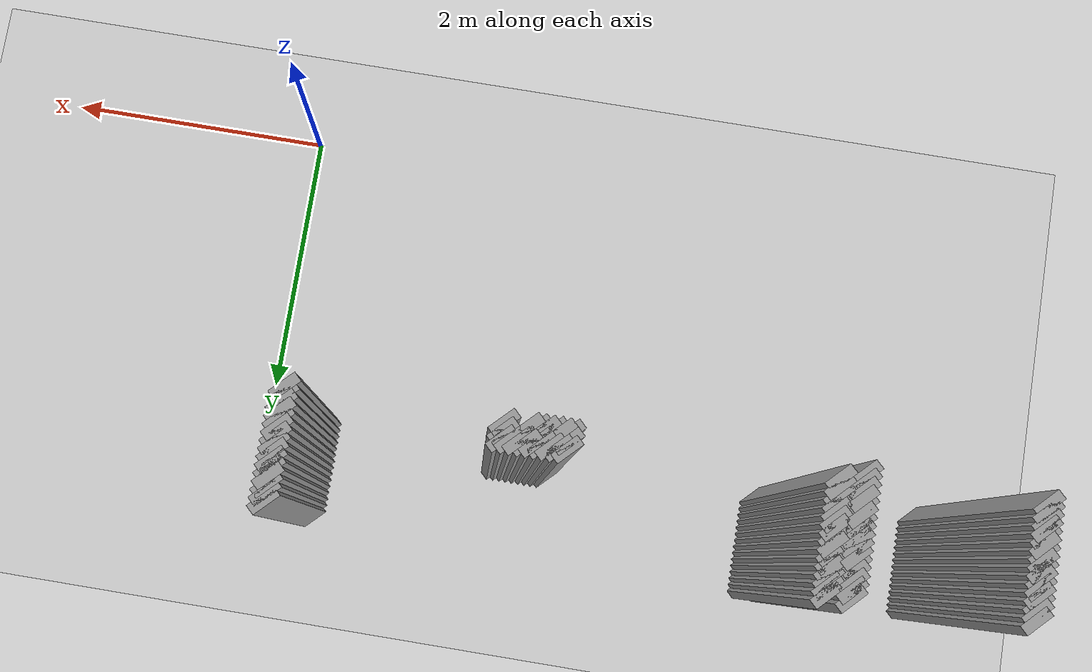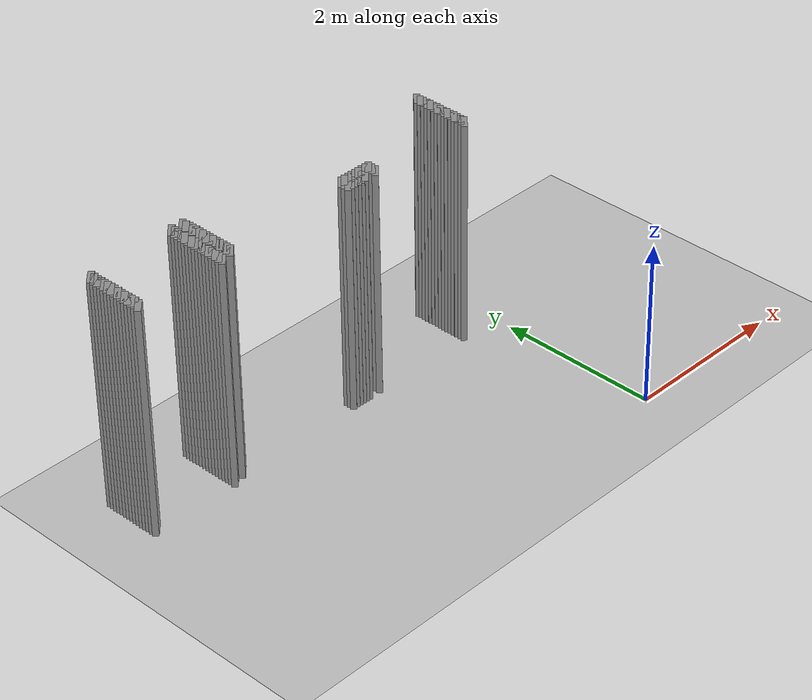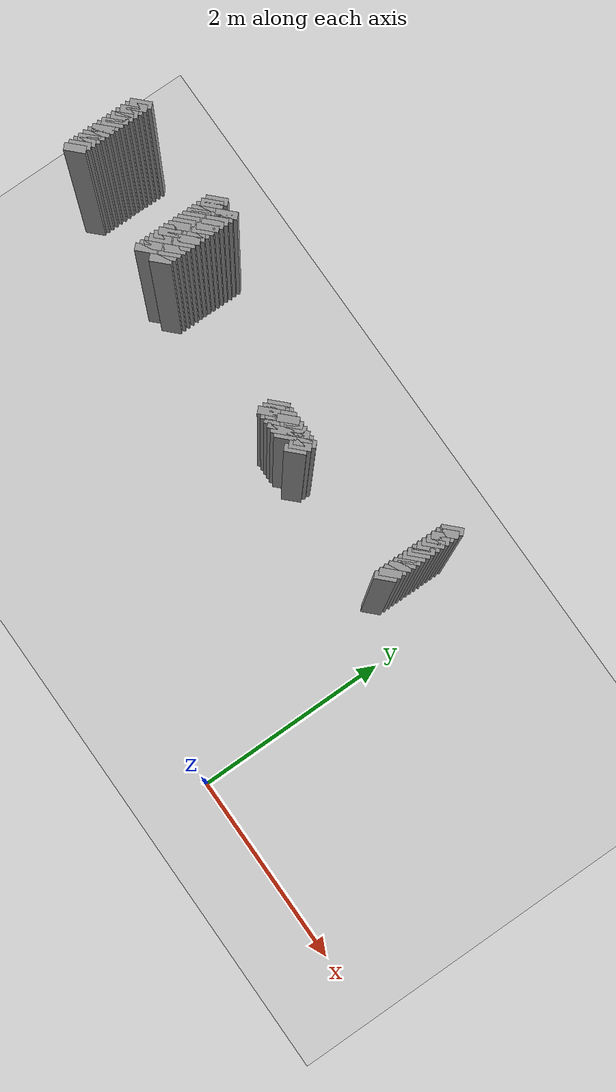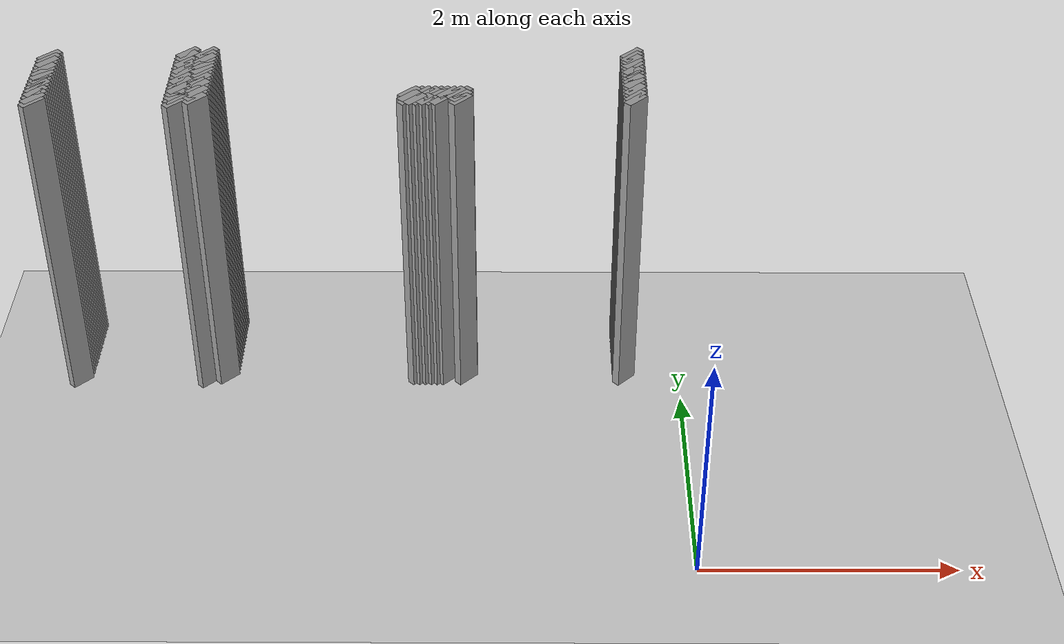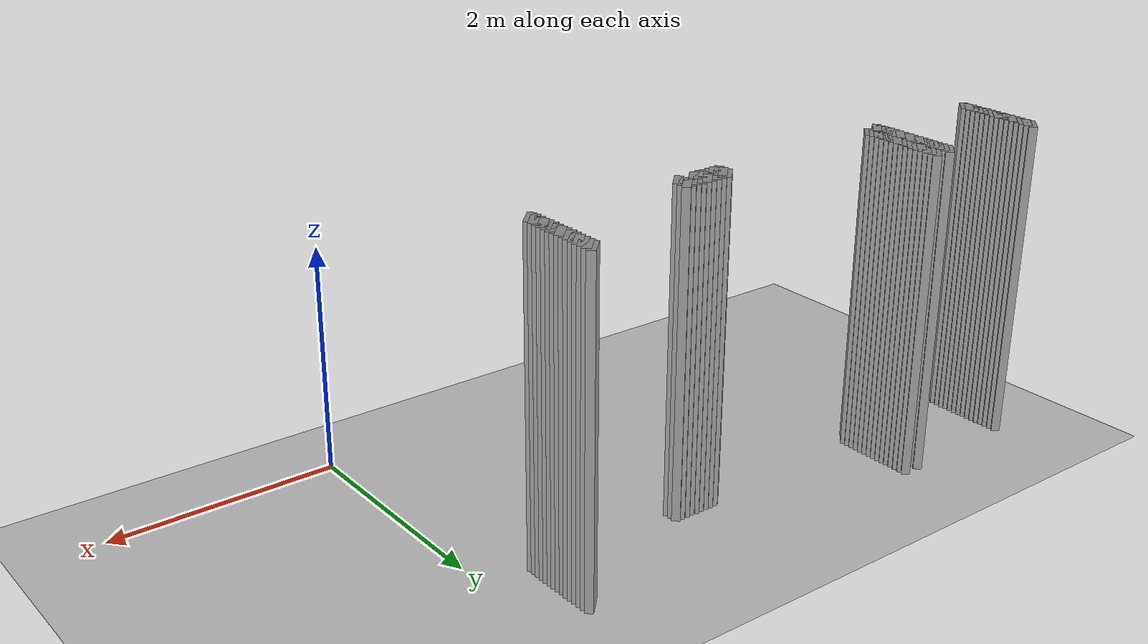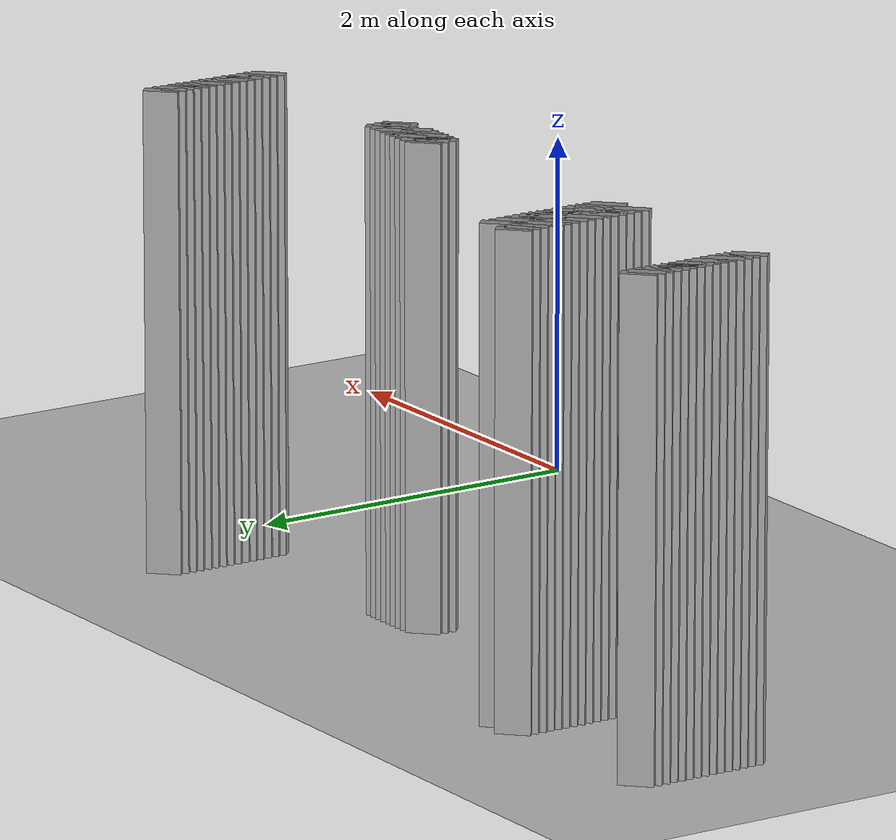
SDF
<sdf version="1.5">
 <world name="default">
  <include><uri>model://ground_plane</uri></include>
  <include><uri>model://sun</uri></include>
  <model name="grey_wall_472">
   <static>1</static>
   <link name="link">
    <pose>-4.025 2.975  1.4 0 0 -0.785398163397</pose>
    <collision name="collision"><geometry><box><size>0.0707106781187 .2  2.8</size></box></geometry></collision>
    <visual name="visual">
     <cast_shadows>0</cast_shadows>
     <geometry><box><size>0.0707106781187 .2  2.8</size></box></geometry>
     <material>
      <script>
       <uri>model://grey_wall/materials/scripts</uri>
       <uri>model://grey_wall/materials/textures</uri>
       <name>vrc/grey_wall</name>
      </script>
     </material>
    </visual>
   </link>
  </model>
  <model name="grey_wall_473">
   <static>1</static>
   <link name="link">
    <pose>-3.875 2.975  1.4 0 0 -0.785398163397</pose>
    <collision name="collision"><geometry><box><size>0.0707106781187 .2  2.8</size></box></geometry></collision>
    <visual name="visual">
     <cast_shadows>0</cast_shadows>
     <geometry><box><size>0.0707106781187 .2  2.8</size></box></geometry>
     <material>
      <script>
       <uri>model://grey_wall/materials/scripts</uri>
       <uri>model://grey_wall/materials/textures</uri>
       <name>vrc/grey_wall</name>
      </script>
     </material>
    </visual>
   </link>
  </model>
  <model name="grey_wall_474">
   <static>1</static>
   <link name="link">
    <pose>-0.475 2.975  1.4 0 0 -0.785398163397</pose>
    <collision name="collision"><geometry><box><size>0.0707106781187 .2  2.8</size></box></geometry></collision>
    <visual name="visual">
     <cast_shadows>0</cast_shadows>
     <geometry><box><size>0.0707106781187 .2  2.8</size></box></geometry>
     <material>
      <script>
       <uri>model://grey_wall/materials/scripts</uri>
       <uri>model://grey_wall/materials/textures</uri>
       <name>vrc/grey_wall</name>
      </script>
     </material>
    </visual>
   </link>
  </model>
  <model name="grey_wall_475">
   <static>1</static>
   <link name="link">
    <pose>-5.125 2.925  1.4 0 0 -0.785398163397</pose>
    <collision name="collision"><geometry><box><size>0.0707106781187 .2  2.8</size></box></geometry></collision>
    <visual name="visual">
     <cast_shadows>0</cast_shadows>
     <geometry><box><size>0.0707106781187 .2  2.8</size></box></geometry>
     <material>
      <script>
       <uri>model://grey_wall/materials/scripts</uri>
       <uri>model://grey_wall/materials/textures</uri>
       <name>vrc/grey_wall</name>
      </script>
     </material>
    </visual>
   </link>
  </model>
  <model name="grey_wall_476">
   <static>1</static>
   <link name="link">
    <pose>-4.025 2.925  1.4 0 0 -0.785398163397</pose>
    <collision name="collision"><geometry><box><size>0.0707106781187 .2  2.8</size></box></geometry></collision>
    <visual name="visual">
     <cast_shadows>0</cast_shadows>
     <geometry><box><size>0.0707106781187 .2  2.8</size></box></geometry>
     <material>
      <script>
       <uri>model://grey_wall/materials/scripts</uri>
       <uri>model://grey_wall/materials/textures</uri>
       <name>vrc/grey_wall</name>
      </script>
     </material>
    </visual>
   </link>
  </model>
  <model name="grey_wall_477">
   <static>1</static>
   <link name="link">
    <pose>-3.875 2.925  1.4 0 0 -0.785398163397</pose>
    <collision name="collision"><geometry><box><size>0.0707106781187 .2  2.8</size></box></geometry></collision>
    <visual name="visual">
     <cast_shadows>0</cast_shadows>
     <geometry><box><size>0.0707106781187 .2  2.8</size></box></geometry>
     <material>
      <script>
       <uri>model://grey_wall/materials/scripts</uri>
       <uri>model://grey_wall/materials/textures</uri>
       <name>vrc/grey_wall</name>
      </script>
     </material>
    </visual>
   </link>
  </model>
  <model name="grey_wall_478">
   <static>1</static>
   <link name="link">
    <pose>-0.475 2.925  1.4 0 0 -0.785398163397</pose>
    <collision name="collision"><geometry><box><size>0.0707106781187 .2  2.8</size></box></geometry></collision>
    <visual name="visual">
     <cast_shadows>0</cast_shadows>
     <geometry><box><size>0.0707106781187 .2  2.8</size></box></geometry>
     <material>
      <script>
       <uri>model://grey_wall/materials/scripts</uri>
       <uri>model://grey_wall/materials/textures</uri>
       <name>vrc/grey_wall</name>
      </script>
     </material>
    </visual>
   </link>
  </model>
  <model name="grey_wall_479">
   <static>1</static>
   <link name="link">
    <pose>-5.125 2.875  1.4 0 0 -0.785398163397</pose>
    <collision name="collision"><geometry><box><size>0.0707106781187 .2  2.8</size></box></geometry></collision>
    <visual name="visual">
     <cast_shadows>0</cast_shadows>
     <geometry><box><size>0.0707106781187 .2  2.8</size></box></geometry>
     <material>
      <script>
       <uri>model://grey_wall/materials/scripts</uri>
       <uri>model://grey_wall/materials/textures</uri>
       <name>vrc/grey_wall</name>
      </script>
     </material>
    </visual>
   </link>
  </model>
  <model name="grey_wall_480">
   <static>1</static>
   <link name="link">
    <pose>-4.025 2.875  1.4 0 0 -0.785398163397</pose>
    <collision name="collision"><geometry><box><size>0.0707106781187 .2  2.8</size></box></geometry></collision>
    <visual name="visual">
     <cast_shadows>0</cast_shadows>
     <geometry><box><size>0.0707106781187 .2  2.8</size></box></geometry>
     <material>
      <script>
       <uri>model://grey_wall/materials/scripts</uri>
       <uri>model://grey_wall/materials/textures</uri>
       <name>vrc/grey_wall</name>
      </script>
     </material>
    </visual>
   </link>
  </model>
  <model name="grey_wall_481">
   <static>1</static>
   <link name="link">
    <pose>-3.875 2.875  1.4 0 0 -0.785398163397</pose>
    <collision name="collision"><geometry><box><size>0.0707106781187 .2  2.8</size></box></geometry></collision>
    <visual name="visual">
     <cast_shadows>0</cast_shadows>
     <geometry><box><size>0.0707106781187 .2  2.8</size></box></geometry>
     <material>
      <script>
       <uri>model://grey_wall/materials/scripts</uri>
       <uri>model://grey_wall/materials/textures</uri>
       <name>vrc/grey_wall</name>
      </script>
     </material>
    </visual>
   </link>
  </model>
  <model name="grey_wall_482">
   <static>1</static>
   <link name="link">
    <pose>-0.475 2.875  1.4 0 0 -0.785398163397</pose>
    <collision name="collision"><geometry><box><size>0.0707106781187 .2  2.8</size></box></geometry></collision>
    <visual name="visual">
     <cast_shadows>0</cast_shadows>
     <geometry><box><size>0.0707106781187 .2  2.8</size></box></geometry>
     <material>
      <script>
       <uri>model://grey_wall/materials/scripts</uri>
       <uri>model://grey_wall/materials/textures</uri>
       <name>vrc/grey_wall</name>
      </script>
     </material>
    </visual>
   </link>
  </model>
  <model name="grey_wall_483">
   <static>1</static>
   <link name="link">
    <pose>-5.125 2.825  1.4 0 0 -0.785398163397</pose>
    <collision name="collision"><geometry><box><size>0.0707106781187 .2  2.8</size></box></geometry></collision>
    <visual name="visual">
     <cast_shadows>0</cast_shadows>
     <geometry><box><size>0.0707106781187 .2  2.8</size></box></geometry>
     <material>
      <script>
       <uri>model://grey_wall/materials/scripts</uri>
       <uri>model://grey_wall/materials/textures</uri>
       <name>vrc/grey_wall</name>
      </script>
     </material>
    </visual>
   </link>
  </model>
  <model name="grey_wall_484">
   <static>1</static>
   <link name="link">
    <pose>-4.025 2.825  1.4 0 0 -0.785398163397</pose>
    <collision name="collision"><geometry><box><size>0.0707106781187 .2  2.8</size></box></geometry></collision>
    <visual name="visual">
     <cast_shadows>0</cast_shadows>
     <geometry><box><size>0.0707106781187 .2  2.8</size></box></geometry>
     <material>
      <script>
       <uri>model://grey_wall/materials/scripts</uri>
       <uri>model://grey_wall/materials/textures</uri>
       <name>vrc/grey_wall</name>
      </script>
     </material>
    </visual>
   </link>
  </model>
  <model name="grey_wall_485">
   <static>1</static>
   <link name="link">
    <pose>-3.875 2.825  1.4 0 0 -0.785398163397</pose>
    <collision name="collision"><geometry><box><size>0.0707106781187 .2  2.8</size></box></geometry></collision>
    <visual name="visual">
     <cast_shadows>0</cast_shadows>
     <geometry><box><size>0.0707106781187 .2  2.8</size></box></geometry>
     <material>
      <script>
       <uri>model://grey_wall/materials/scripts</uri>
       <uri>model://grey_wall/materials/textures</uri>
       <name>vrc/grey_wall</name>
      </script>
     </material>
    </visual>
   </link>
  </model>
  <model name="grey_wall_486">
   <static>1</static>
   <link name="link">
    <pose>-0.475 2.825  1.4 0 0 -0.785398163397</pose>
    <collision name="collision"><geometry><box><size>0.0707106781187 .2  2.8</size></box></geometry></collision>
    <visual name="visual">
     <cast_shadows>0</cast_shadows>
     <geometry><box><size>0.0707106781187 .2  2.8</size></box></geometry>
     <material>
      <script>
       <uri>model://grey_wall/materials/scripts</uri>
       <uri>model://grey_wall/materials/textures</uri>
       <name>vrc/grey_wall</name>
      </script>
     </material>
    </visual>
   </link>
  </model>
  <model name="grey_wall_487">
   <static>1</static>
   <link name="link">
    <pose>-5.125 2.775  1.4 0 0 -0.785398163397</pose>
    <collision name="collision"><geometry><box><size>0.0707106781187 .2  2.8</size></box></geometry></collision>
    <visual name="visual">
     <cast_shadows>0</cast_shadows>
     <geometry><box><size>0.0707106781187 .2  2.8</size></box></geometry>
     <material>
      <script>
       <uri>model://grey_wall/materials/scripts</uri>
       <uri>model://grey_wall/materials/textures</uri>
       <name>vrc/grey_wall</name>
      </script>
     </material>
    </visual>
   </link>
  </model>
  <model name="grey_wall_488">
   <static>1</static>
   <link name="link">
    <pose>-4.025 2.775  1.4 0 0 -0.785398163397</pose>
    <collision name="collision"><geometry><box><size>0.0707106781187 .2  2.8</size></box></geometry></collision>
    <visual name="visual">
     <cast_shadows>0</cast_shadows>
     <geometry><box><size>0.0707106781187 .2  2.8</size></box></geometry>
     <material>
      <script>
       <uri>model://grey_wall/materials/scripts</uri>
       <uri>model://grey_wall/materials/textures</uri>
       <name>vrc/grey_wall</name>
      </script>
     </material>
    </visual>
   </link>
  </model>
  <model name="grey_wall_489">
   <static>1</static>
   <link name="link">
    <pose>-3.875 2.775  1.4 0 0 -0.785398163397</pose>
    <collision name="collision"><geometry><box><size>0.0707106781187 .2  2.8</size></box></geometry></collision>
    <visual name="visual">
     <cast_shadows>0</cast_shadows>
     <geometry><box><size>0.0707106781187 .2  2.8</size></box></geometry>
     <material>
      <script>
       <uri>model://grey_wall/materials/scripts</uri>
       <uri>model://grey_wall/materials/textures</uri>
       <name>vrc/grey_wall</name>
      </script>
     </material>
    </visual>
   </link>
  </model>
  <model name="grey_wall_490">
   <static>1</static>
   <link name="link">
    <pose>-0.475 2.775  1.4 0 0 -0.785398163397</pose>
    <collision name="collision"><geometry><box><size>0.0707106781187 .2  2.8</size></box></geometry></collision>
    <visual name="visual">
     <cast_shadows>0</cast_shadows>
     <geometry><box><size>0.0707106781187 .2  2.8</size></box></geometry>
     <material>
      <script>
       <uri>model://grey_wall/materials/scripts</uri>
       <uri>model://grey_wall/materials/textures</uri>
       <name>vrc/grey_wall</name>
      </script>
     </material>
    </visual>
   </link>
  </model>
  <model name="grey_wall_491">
   <static>1</static>
   <link name="link">
    <pose>-5.125 2.725  1.4 0 0 -0.785398163397</pose>
    <collision name="collision"><geometry><box><size>0.0707106781187 .2  2.8</size></box></geometry></collision>
    <visual name="visual">
     <cast_shadows>0</cast_shadows>
     <geometry><box><size>0.0707106781187 .2  2.8</size></box></geometry>
     <material>
      <script>
       <uri>model://grey_wall/materials/scripts</uri>
       <uri>model://grey_wall/materials/textures</uri>
       <name>vrc/grey_wall</name>
      </script>
     </material>
    </visual>
   </link>
  </model>
  <model name="grey_wall_492">
   <static>1</static>
   <link name="link">
    <pose>-4.025 2.725  1.4 0 0 -0.785398163397</pose>
    <collision name="collision"><geometry><box><size>0.0707106781187 .2  2.8</size></box></geometry></collision>
    <visual name="visual">
     <cast_shadows>0</cast_shadows>
     <geometry><box><size>0.0707106781187 .2  2.8</size></box></geometry>
     <material>
      <script>
       <uri>model://grey_wall/materials/scripts</uri>
       <uri>model://grey_wall/materials/textures</uri>
       <name>vrc/grey_wall</name>
      </script>
     </material>
    </visual>
   </link>
  </model>
  <model name="grey_wall_493">
   <static>1</static>
   <link name="link">
    <pose>-3.875 2.725  1.4 0 0 -0.785398163397</pose>
    <collision name="collision"><geometry><box><size>0.0707106781187 .2  2.8</size></box></geometry></collision>
    <visual name="visual">
     <cast_shadows>0</cast_shadows>
     <geometry><box><size>0.0707106781187 .2  2.8</size></box></geometry>
     <material>
      <script>
       <uri>model://grey_wall/materials/scripts</uri>
       <uri>model://grey_wall/materials/textures</uri>
       <name>vrc/grey_wall</name>
      </script>
     </material>
    </visual>
   </link>
  </model>
  <model name="grey_wall_494">
   <static>1</static>
   <link name="link">
    <pose>-0.475 2.725  1.4 0 0 -0.785398163397</pose>
    <collision name="collision"><geometry><box><size>0.0707106781187 .2  2.8</size></box></geometry></collision>
    <visual name="visual">
     <cast_shadows>0</cast_shadows>
     <geometry><box><size>0.0707106781187 .2  2.8</size></box></geometry>
     <material>
      <script>
       <uri>model://grey_wall/materials/scripts</uri>
       <uri>model://grey_wall/materials/textures</uri>
       <name>vrc/grey_wall</name>
      </script>
     </material>
    </visual>
   </link>
  </model>
  <model name="grey_wall_495">
   <static>1</static>
   <link name="link">
    <pose>-5.125 2.675  1.4 0 0 -0.785398163397</pose>
    <collision name="collision"><geometry><box><size>0.0707106781187 .2  2.8</size></box></geometry></collision>
    <visual name="visual">
     <cast_shadows>0</cast_shadows>
     <geometry><box><size>0.0707106781187 .2  2.8</size></box></geometry>
     <material>
      <script>
       <uri>model://grey_wall/materials/scripts</uri>
       <uri>model://grey_wall/materials/textures</uri>
       <name>vrc/grey_wall</name>
      </script>
     </material>
    </visual>
   </link>
  </model>
  <model name="grey_wall_496">
   <static>1</static>
   <link name="link">
    <pose>-4.025 2.675  1.4 0 0 -0.785398163397</pose>
    <collision name="collision"><geometry><box><size>0.0707106781187 .2  2.8</size></box></geometry></collision>
    <visual name="visual">
     <cast_shadows>0</cast_shadows>
     <geometry><box><size>0.0707106781187 .2  2.8</size></box></geometry>
     <material>
      <script>
       <uri>model://grey_wall/materials/scripts</uri>
       <uri>model://grey_wall/materials/textures</uri>
       <name>vrc/grey_wall</name>
      </script>
     </material>
    </visual>
   </link>
  </model>
  <model name="grey_wall_497">
   <static>1</static>
   <link name="link">
    <pose>-3.875 2.675  1.4 0 0 -0.785398163397</pose>
    <collision name="collision"><geometry><box><size>0.0707106781187 .2  2.8</size></box></geometry></collision>
    <visual name="visual">
     <cast_shadows>0</cast_shadows>
     <geometry><box><size>0.0707106781187 .2  2.8</size></box></geometry>
     <material>
      <script>
       <uri>model://grey_wall/materials/scripts</uri>
       <uri>model://grey_wall/materials/textures</uri>
       <name>vrc/grey_wall</name>
      </script>
     </material>
    </visual>
   </link>
  </model>
  <model name="grey_wall_498">
   <static>1</static>
   <link name="link">
    <pose>-0.475 2.675  1.4 0 0 -0.785398163397</pose>
    <collision name="collision"><geometry><box><size>0.0707106781187 .2  2.8</size></box></geometry></collision>
    <visual name="visual">
     <cast_shadows>0</cast_shadows>
     <geometry><box><size>0.0707106781187 .2  2.8</size></box></geometry>
     <material>
      <script>
       <uri>model://grey_wall/materials/scripts</uri>
       <uri>model://grey_wall/materials/textures</uri>
       <name>vrc/grey_wall</name>
      </script>
     </material>
    </visual>
   </link>
  </model>
  <model name="grey_wall_499">
   <static>1</static>
   <link name="link">
    <pose>-5.125 2.625  1.4 0 0 -0.785398163397</pose>
    <collision name="collision"><geometry><box><size>0.0707106781187 .2  2.8</size></box></geometry></collision>
    <visual name="visual">
     <cast_shadows>0</cast_shadows>
     <geometry><box><size>0.0707106781187 .2  2.8</size></box></geometry>
     <material>
      <script>
       <uri>model://grey_wall/materials/scripts</uri>
       <uri>model://grey_wall/materials/textures</uri>
       <name>vrc/grey_wall</name>
      </script>
     </material>
    </visual>
   </link>
  </model>
  <model name="grey_wall_500">
   <static>1</static>
   <link name="link">
    <pose>-4.025 2.625  1.4 0 0 -0.785398163397</pose>
    <collision name="collision"><geometry><box><size>0.0707106781187 .2  2.8</size></box></geometry></collision>
    <visual name="visual">
     <cast_shadows>0</cast_shadows>
     <geometry><box><size>0.0707106781187 .2  2.8</size></box></geometry>
     <material>
      <script>
       <uri>model://grey_wall/materials/scripts</uri>
       <uri>model://grey_wall/materials/textures</uri>
       <name>vrc/grey_wall</name>
      </script>
     </material>
    </visual>
   </link>
  </model>
  <model name="grey_wall_501">
   <static>1</static>
   <link name="link">
    <pose>-3.875 2.625  1.4 0 0 -0.785398163397</pose>
    <collision name="collision"><geometry><box><size>0.0707106781187 .2  2.8</size></box></geometry></collision>
    <visual name="visual">
     <cast_shadows>0</cast_shadows>
     <geometry><box><size>0.0707106781187 .2  2.8</size></box></geometry>
     <material>
      <script>
       <uri>model://grey_wall/materials/scripts</uri>
       <uri>model://grey_wall/materials/textures</uri>
       <name>vrc/grey_wall</name>
      </script>
     </material>
    </visual>
   </link>
  </model>
  <model name="grey_wall_502">
   <static>1</static>
   <link name="link">
    <pose>-0.475 2.625  1.4 0 0 -0.785398163397</pose>
    <collision name="collision"><geometry><box><size>0.0707106781187 .2  2.8</size></box></geometry></collision>
    <visual name="visual">
     <cast_shadows>0</cast_shadows>
     <geometry><box><size>0.0707106781187 .2  2.8</size></box></geometry>
     <material>
      <script>
       <uri>model://grey_wall/materials/scripts</uri>
       <uri>model://grey_wall/materials/textures</uri>
       <name>vrc/grey_wall</name>
      </script>
     </material>
    </visual>
   </link>
  </model>
  <model name="grey_wall_503">
   <static>1</static>
   <link name="link">
    <pose>-5.125 2.575  1.4 0 0 -0.785398163397</pose>
    <collision name="collision"><geometry><box><size>0.0707106781187 .2  2.8</size></box></geometry></collision>
    <visual name="visual">
     <cast_shadows>0</cast_shadows>
     <geometry><box><size>0.0707106781187 .2  2.8</size></box></geometry>
     <material>
      <script>
       <uri>model://grey_wall/materials/scripts</uri>
       <uri>model://grey_wall/materials/textures</uri>
       <name>vrc/grey_wall</name>
      </script>
     </material>
    </visual>
   </link>
  </model>
  <model name="grey_wall_504">
   <static>1</static>
   <link name="link">
    <pose>-4.025 2.575  1.4 0 0 -0.785398163397</pose>
    <collision name="collision"><geometry><box><size>0.0707106781187 .2  2.8</size></box></geometry></collision>
    <visual name="visual">
     <cast_shadows>0</cast_shadows>
     <geometry><box><size>0.0707106781187 .2  2.8</size></box></geometry>
     <material>
      <script>
       <uri>model://grey_wall/materials/scripts</uri>
       <uri>model://grey_wall/materials/textures</uri>
       <name>vrc/grey_wall</name>
      </script>
     </material>
    </visual>
   </link>
  </model>
  <model name="grey_wall_505">
   <static>1</static>
   <link name="link">
    <pose>-3.875 2.575  1.4 0 0 -0.785398163397</pose>
    <collision name="collision"><geometry><box><size>0.0707106781187 .2  2.8</size></box></geometry></collision>
    <visual name="visual">
     <cast_shadows>0</cast_shadows>
     <geometry><box><size>0.0707106781187 .2  2.8</size></box></geometry>
     <material>
      <script>
       <uri>model://grey_wall/materials/scripts</uri>
       <uri>model://grey_wall/materials/textures</uri>
       <name>vrc/grey_wall</name>
      </script>
     </material>
    </visual>
   </link>
  </model>
  <model name="grey_wall_506">
   <static>1</static>
   <link name="link">
    <pose>-0.475 2.575  1.4 0 0 -0.785398163397</pose>
    <collision name="collision"><geometry><box><size>0.0707106781187 .2  2.8</size></box></geometry></collision>
    <visual name="visual">
     <cast_shadows>0</cast_shadows>
     <geometry><box><size>0.0707106781187 .2  2.8</size></box></geometry>
     <material>
      <script>
       <uri>model://grey_wall/materials/scripts</uri>
       <uri>model://grey_wall/materials/textures</uri>
       <name>vrc/grey_wall</name>
      </script>
     </material>
    </visual>
   </link>
  </model>
  <model name="grey_wall_507">
   <static>1</static>
   <link name="link">
    <pose>-5.125 2.525  1.4 0 0 -0.785398163397</pose>
    <collision name="collision"><geometry><box><size>0.0707106781187 .2  2.8</size></box></geometry></collision>
    <visual name="visual">
     <cast_shadows>0</cast_shadows>
     <geometry><box><size>0.0707106781187 .2  2.8</size></box></geometry>
     <material>
      <script>
       <uri>model://grey_wall/materials/scripts</uri>
       <uri>model://grey_wall/materials/textures</uri>
       <name>vrc/grey_wall</name>
      </script>
     </material>
    </visual>
   </link>
  </model>
  <model name="grey_wall_508">
   <static>1</static>
   <link name="link">
    <pose>-4.025 2.525  1.4 0 0 -0.785398163397</pose>
    <collision name="collision"><geometry><box><size>0.0707106781187 .2  2.8</size></box></geometry></collision>
    <visual name="visual">
     <cast_shadows>0</cast_shadows>
     <geometry><box><size>0.0707106781187 .2  2.8</size></box></geometry>
     <material>
      <script>
       <uri>model://grey_wall/materials/scripts</uri>
       <uri>model://grey_wall/materials/textures</uri>
       <name>vrc/grey_wall</name>
      </script>
     </material>
    </visual>
   </link>
  </model>
  <model name="grey_wall_509">
   <static>1</static>
   <link name="link">
    <pose>-3.875 2.525  1.4 0 0 -0.785398163397</pose>
    <collision name="collision"><geometry><box><size>0.0707106781187 .2  2.8</size></box></geometry></collision>
    <visual name="visual">
     <cast_shadows>0</cast_shadows>
     <geometry><box><size>0.0707106781187 .2  2.8</size></box></geometry>
     <material>
      <script>
       <uri>model://grey_wall/materials/scripts</uri>
       <uri>model://grey_wall/materials/textures</uri>
       <name>vrc/grey_wall</name>
      </script>
     </material>
    </visual>
   </link>
  </model>
  <model name="grey_wall_510">
   <static>1</static>
   <link name="link">
    <pose>-0.475 2.525  1.4 0 0 -0.785398163397</pose>
    <collision name="collision"><geometry><box><size>0.0707106781187 .2  2.8</size></box></geometry></collision>
    <visual name="visual">
     <cast_shadows>0</cast_shadows>
     <geometry><box><size>0.0707106781187 .2  2.8</size></box></geometry>
     <material>
      <script>
       <uri>model://grey_wall/materials/scripts</uri>
       <uri>model://grey_wall/materials/textures</uri>
       <name>vrc/grey_wall</name>
      </script>
     </material>
    </visual>
   </link>
  </model>
  <model name="grey_wall_511">
   <static>1</static>
   <link name="link">
    <pose>-5.125 2.475  1.4 0 0 -0.785398163397</pose>
    <collision name="collision"><geometry><box><size>0.0707106781187 .2  2.8</size></box></geometry></collision>
    <visual name="visual">
     <cast_shadows>0</cast_shadows>
     <geometry><box><size>0.0707106781187 .2  2.8</size></box></geometry>
     <material>
      <script>
       <uri>model://grey_wall/materials/scripts</uri>
       <uri>model://grey_wall/materials/textures</uri>
       <name>vrc/grey_wall</name>
      </script>
     </material>
    </visual>
   </link>
  </model>
  <model name="grey_wall_512">
   <static>1</static>
   <link name="link">
    <pose>-4.025 2.475  1.4 0 0 -0.785398163397</pose>
    <collision name="collision"><geometry><box><size>0.0707106781187 .2  2.8</size></box></geometry></collision>
    <visual name="visual">
     <cast_shadows>0</cast_shadows>
     <geometry><box><size>0.0707106781187 .2  2.8</size></box></geometry>
     <material>
      <script>
       <uri>model://grey_wall/materials/scripts</uri>
       <uri>model://grey_wall/materials/textures</uri>
       <name>vrc/grey_wall</name>
      </script>
     </material>
    </visual>
   </link>
  </model>
  <model name="grey_wall_513">
   <static>1</static>
   <link name="link">
    <pose>-3.875 2.475  1.4 0 0 -0.785398163397</pose>
    <collision name="collision"><geometry><box><size>0.0707106781187 .2  2.8</size></box></geometry></collision>
    <visual name="visual">
     <cast_shadows>0</cast_shadows>
     <geometry><box><size>0.0707106781187 .2  2.8</size></box></geometry>
     <material>
      <script>
       <uri>model://grey_wall/materials/scripts</uri>
       <uri>model://grey_wall/materials/textures</uri>
       <name>vrc/grey_wall</name>
      </script>
     </material>
    </visual>
   </link>
  </model>
  <model name="grey_wall_514">
   <static>1</static>
   <link name="link">
    <pose>-0.475 2.475  1.4 0 0 -0.785398163397</pose>
    <collision name="collision"><geometry><box><size>0.0707106781187 .2  2.8</size></box></geometry></collision>
    <visual name="visual">
     <cast_shadows>0</cast_shadows>
     <geometry><box><size>0.0707106781187 .2  2.8</size></box></geometry>
     <material>
      <script>
       <uri>model://grey_wall/materials/scripts</uri>
       <uri>model://grey_wall/materials/textures</uri>
       <name>vrc/grey_wall</name>
      </script>
     </material>
    </visual>
   </link>
  </model>
  <model name="grey_wall_515">
   <static>1</static>
   <link name="link">
    <pose>-5.125 2.425  1.4 0 0 -0.785398163397</pose>
    <collision name="collision"><geometry><box><size>0.0707106781187 .2  2.8</size></box></geometry></collision>
    <visual name="visual">
     <cast_shadows>0</cast_shadows>
     <geometry><box><size>0.0707106781187 .2  2.8</size></box></geometry>
     <material>
      <script>
       <uri>model://grey_wall/materials/scripts</uri>
       <uri>model://grey_wall/materials/textures</uri>
       <name>vrc/grey_wall</name>
      </script>
     </material>
    </visual>
   </link>
  </model>
  <model name="grey_wall_516">
   <static>1</static>
   <link name="link">
    <pose>-4.025 2.425  1.4 0 0 -0.785398163397</pose>
    <collision name="collision"><geometry><box><size>0.0707106781187 .2  2.8</size></box></geometry></collision>
    <visual name="visual">
     <cast_shadows>0</cast_shadows>
     <geometry><box><size>0.0707106781187 .2  2.8</size></box></geometry>
     <material>
      <script>
       <uri>model://grey_wall/materials/scripts</uri>
       <uri>model://grey_wall/materials/textures</uri>
       <name>vrc/grey_wall</name>
      </script>
     </material>
    </visual>
   </link>
  </model>
  <model name="grey_wall_517">
   <static>1</static>
   <link name="link">
    <pose>-3.875 2.425  1.4 0 0 -0.785398163397</pose>
    <collision name="collision"><geometry><box><size>0.0707106781187 .2  2.8</size></box></geometry></collision>
    <visual name="visual">
     <cast_shadows>0</cast_shadows>
     <geometry><box><size>0.0707106781187 .2  2.8</size></box></geometry>
     <material>
      <script>
       <uri>model://grey_wall/materials/scripts</uri>
       <uri>model://grey_wall/materials/textures</uri>
       <name>vrc/grey_wall</name>
      </script>
     </material>
    </visual>
   </link>
  </model>
  <model name="grey_wall_518">
   <static>1</static>
   <link name="link">
    <pose>-0.475 2.425  1.4 0 0 -0.785398163397</pose>
    <collision name="collision"><geometry><box><size>0.0707106781187 .2  2.8</size></box></geometry></collision>
    <visual name="visual">
     <cast_shadows>0</cast_shadows>
     <geometry><box><size>0.0707106781187 .2  2.8</size></box></geometry>
     <material>
      <script>
       <uri>model://grey_wall/materials/scripts</uri>
       <uri>model://grey_wall/materials/textures</uri>
       <name>vrc/grey_wall</name>
      </script>
     </material>
    </visual>
   </link>
  </model>
  <model name="grey_wall_519">
   <static>1</static>
   <link name="link">
    <pose>-5.125 2.375  1.4 0 0 -0.785398163397</pose>
    <collision name="collision"><geometry><box><size>0.0707106781187 .2  2.8</size></box></geometry></collision>
    <visual name="visual">
     <cast_shadows>0</cast_shadows>
     <geometry><box><size>0.0707106781187 .2  2.8</size></box></geometry>
     <material>
      <script>
       <uri>model://grey_wall/materials/scripts</uri>
       <uri>model://grey_wall/materials/textures</uri>
       <name>vrc/grey_wall</name>
      </script>
     </material>
    </visual>
   </link>
  </model>
  <model name="grey_wall_520">
   <static>1</static>
   <link name="link">
    <pose>-4.025 2.375  1.4 0 0 -0.785398163397</pose>
    <collision name="collision"><geometry><box><size>0.0707106781187 .2  2.8</size></box></geometry></collision>
    <visual name="visual">
     <cast_shadows>0</cast_shadows>
     <geometry><box><size>0.0707106781187 .2  2.8</size></box></geometry>
     <material>
      <script>
       <uri>model://grey_wall/materials/scripts</uri>
       <uri>model://grey_wall/materials/textures</uri>
       <name>vrc/grey_wall</name>
      </script>
     </material>
    </visual>
   </link>
  </model>
  <model name="grey_wall_521">
   <static>1</static>
   <link name="link">
    <pose>-3.875 2.375  1.4 0 0 -0.785398163397</pose>
    <collision name="collision"><geometry><box><size>0.0707106781187 .2  2.8</size></box></geometry></collision>
    <visual name="visual">
     <cast_shadows>0</cast_shadows>
     <geometry><box><size>0.0707106781187 .2  2.8</size></box></geometry>
     <material>
      <script>
       <uri>model://grey_wall/materials/scripts</uri>
       <uri>model://grey_wall/materials/textures</uri>
       <name>vrc/grey_wall</name>
      </script>
     </material>
    </visual>
   </link>
  </model>
  <model name="grey_wall_522">
   <static>1</static>
   <link name="link">
    <pose>-2.225 2.375  1.4 0 0 -0.785398163397</pose>
    <collision name="collision"><geometry><box><size>0.0707106781187 .2  2.8</size></box></geometry></collision>
    <visual name="visual">
     <cast_shadows>0</cast_shadows>
     <geometry><box><size>0.0707106781187 .2  2.8</size></box></geometry>
     <material>
      <script>
       <uri>model://grey_wall/materials/scripts</uri>
       <uri>model://grey_wall/materials/textures</uri>
       <name>vrc/grey_wall</name>
      </script>
     </material>
    </visual>
   </link>
  </model>
  <model name="grey_wall_523">
   <static>1</static>
   <link name="link">
    <pose>-2.175 2.375  1.4 0 0 -0.785398163397</pose>
    <collision name="collision"><geometry><box><size>0.0707106781187 .2  2.8</size></box></geometry></collision>
    <visual name="visual">
     <cast_shadows>0</cast_shadows>
     <geometry><box><size>0.0707106781187 .2  2.8</size></box></geometry>
     <material>
      <script>
       <uri>model://grey_wall/materials/scripts</uri>
       <uri>model://grey_wall/materials/textures</uri>
       <name>vrc/grey_wall</name>
      </script>
     </material>
    </visual>
   </link>
  </model>
  <model name="grey_wall_524">
   <static>1</static>
   <link name="link">
    <pose>-2.125 2.375  1.4 0 0 -0.785398163397</pose>
    <collision name="collision"><geometry><box><size>0.0707106781187 .2  2.8</size></box></geometry></collision>
    <visual name="visual">
     <cast_shadows>0</cast_shadows>
     <geometry><box><size>0.0707106781187 .2  2.8</size></box></geometry>
     <material>
      <script>
       <uri>model://grey_wall/materials/scripts</uri>
       <uri>model://grey_wall/materials/textures</uri>
       <name>vrc/grey_wall</name>
      </script>
     </material>
    </visual>
   </link>
  </model>
  <model name="grey_wall_525">
   <static>1</static>
   <link name="link">
    <pose>-2.075 2.375  1.4 0 0 -0.785398163397</pose>
    <collision name="collision"><geometry><box><size>0.0707106781187 .2  2.8</size></box></geometry></collision>
    <visual name="visual">
     <cast_shadows>0</cast_shadows>
     <geometry><box><size>0.0707106781187 .2  2.8</size></box></geometry>
     <material>
      <script>
       <uri>model://grey_wall/materials/scripts</uri>
       <uri>model://grey_wall/materials/textures</uri>
       <name>vrc/grey_wall</name>
      </script>
     </material>
    </visual>
   </link>
  </model>
  <model name="grey_wall_526">
   <static>1</static>
   <link name="link">
    <pose>-2.025 2.375  1.4 0 0 -0.785398163397</pose>
    <collision name="collision"><geometry><box><size>0.0707106781187 .2  2.8</size></box></geometry></collision>
    <visual name="visual">
     <cast_shadows>0</cast_shadows>
     <geometry><box><size>0.0707106781187 .2  2.8</size></box></geometry>
     <material>
      <script>
       <uri>model://grey_wall/materials/scripts</uri>
       <uri>model://grey_wall/materials/textures</uri>
       <name>vrc/grey_wall</name>
      </script>
     </material>
    </visual>
   </link>
  </model>
  <model name="grey_wall_527">
   <static>1</static>
   <link name="link">
    <pose>-1.975 2.375  1.4 0 0 -0.785398163397</pose>
    <collision name="collision"><geometry><box><size>0.0707106781187 .2  2.8</size></box></geometry></collision>
    <visual name="visual">
     <cast_shadows>0</cast_shadows>
     <geometry><box><size>0.0707106781187 .2  2.8</size></box></geometry>
     <material>
      <script>
       <uri>model://grey_wall/materials/scripts</uri>
       <uri>model://grey_wall/materials/textures</uri>
       <name>vrc/grey_wall</name>
      </script>
     </material>
    </visual>
   </link>
  </model>
  <model name="grey_wall_528">
   <static>1</static>
   <link name="link">
    <pose>-1.925 2.375  1.4 0 0 -0.785398163397</pose>
    <collision name="collision"><geometry><box><size>0.0707106781187 .2  2.8</size></box></geometry></collision>
    <visual name="visual">
     <cast_shadows>0</cast_shadows>
     <geometry><box><size>0.0707106781187 .2  2.8</size></box></geometry>
     <material>
      <script>
       <uri>model://grey_wall/materials/scripts</uri>
       <uri>model://grey_wall/materials/textures</uri>
       <name>vrc/grey_wall</name>
      </script>
     </material>
    </visual>
   </link>
  </model>
  <model name="grey_wall_529">
   <static>1</static>
   <link name="link">
    <pose>-1.875 2.375  1.4 0 0 -0.785398163397</pose>
    <collision name="collision"><geometry><box><size>0.0707106781187 .2  2.8</size></box></geometry></collision>
    <visual name="visual">
     <cast_shadows>0</cast_shadows>
     <geometry><box><size>0.0707106781187 .2  2.8</size></box></geometry>
     <material>
      <script>
       <uri>model://grey_wall/materials/scripts</uri>
       <uri>model://grey_wall/materials/textures</uri>
       <name>vrc/grey_wall</name>
      </script>
     </material>
    </visual>
   </link>
  </model>
  <model name="grey_wall_530">
   <static>1</static>
   <link name="link">
    <pose>-1.825 2.375  1.4 0 0 -0.785398163397</pose>
    <collision name="collision"><geometry><box><size>0.0707106781187 .2  2.8</size></box></geometry></collision>
    <visual name="visual">
     <cast_shadows>0</cast_shadows>
     <geometry><box><size>0.0707106781187 .2  2.8</size></box></geometry>
     <material>
      <script>
       <uri>model://grey_wall/materials/scripts</uri>
       <uri>model://grey_wall/materials/textures</uri>
       <name>vrc/grey_wall</name>
      </script>
     </material>
    </visual>
   </link>
  </model>
  <model name="grey_wall_531">
   <static>1</static>
   <link name="link">
    <pose>-0.475 2.375  1.4 0 0 -0.785398163397</pose>
    <collision name="collision"><geometry><box><size>0.0707106781187 .2  2.8</size></box></geometry></collision>
    <visual name="visual">
     <cast_shadows>0</cast_shadows>
     <geometry><box><size>0.0707106781187 .2  2.8</size></box></geometry>
     <material>
      <script>
       <uri>model://grey_wall/materials/scripts</uri>
       <uri>model://grey_wall/materials/textures</uri>
       <name>vrc/grey_wall</name>
      </script>
     </material>
    </visual>
   </link>
  </model>
  <model name="grey_wall_532">
   <static>1</static>
   <link name="link">
    <pose>-5.125 2.325  1.4 0 0 -0.785398163397</pose>
    <collision name="collision"><geometry><box><size>0.0707106781187 .2  2.8</size></box></geometry></collision>
    <visual name="visual">
     <cast_shadows>0</cast_shadows>
     <geometry><box><size>0.0707106781187 .2  2.8</size></box></geometry>
     <material>
      <script>
       <uri>model://grey_wall/materials/scripts</uri>
       <uri>model://grey_wall/materials/textures</uri>
       <name>vrc/grey_wall</name>
      </script>
     </material>
    </visual>
   </link>
  </model>
  <model name="grey_wall_533">
   <static>1</static>
   <link name="link">
    <pose>-4.025 2.325  1.4 0 0 -0.785398163397</pose>
    <collision name="collision"><geometry><box><size>0.0707106781187 .2  2.8</size></box></geometry></collision>
    <visual name="visual">
     <cast_shadows>0</cast_shadows>
     <geometry><box><size>0.0707106781187 .2  2.8</size></box></geometry>
     <material>
      <script>
       <uri>model://grey_wall/materials/scripts</uri>
       <uri>model://grey_wall/materials/textures</uri>
       <name>vrc/grey_wall</name>
      </script>
     </material>
    </visual>
   </link>
  </model>
  <model name="grey_wall_534">
   <static>1</static>
   <link name="link">
    <pose>-3.875 2.325  1.4 0 0 -0.785398163397</pose>
    <collision name="collision"><geometry><box><size>0.0707106781187 .2  2.8</size></box></geometry></collision>
    <visual name="visual">
     <cast_shadows>0</cast_shadows>
     <geometry><box><size>0.0707106781187 .2  2.8</size></box></geometry>
     <material>
      <script>
       <uri>model://grey_wall/materials/scripts</uri>
       <uri>model://grey_wall/materials/textures</uri>
       <name>vrc/grey_wall</name>
      </script>
     </material>
    </visual>
   </link>
  </model>
  <model name="grey_wall_535">
   <static>1</static>
   <link name="link">
    <pose>-2.225 2.325  1.4 0 0 -0.785398163397</pose>
    <collision name="collision"><geometry><box><size>0.0707106781187 .2  2.8</size></box></geometry></collision>
    <visual name="visual">
     <cast_shadows>0</cast_shadows>
     <geometry><box><size>0.0707106781187 .2  2.8</size></box></geometry>
     <material>
      <script>
       <uri>model://grey_wall/materials/scripts</uri>
       <uri>model://grey_wall/materials/textures</uri>
       <name>vrc/grey_wall</name>
      </script>
     </material>
    </visual>
   </link>
  </model>
  <model name="grey_wall_536">
   <static>1</static>
   <link name="link">
    <pose>-1.825 2.325  1.4 0 0 -0.785398163397</pose>
    <collision name="collision"><geometry><box><size>0.0707106781187 .2  2.8</size></box></geometry></collision>
    <visual name="visual">
     <cast_shadows>0</cast_shadows>
     <geometry><box><size>0.0707106781187 .2  2.8</size></box></geometry>
     <material>
      <script>
       <uri>model://grey_wall/materials/scripts</uri>
       <uri>model://grey_wall/materials/textures</uri>
       <name>vrc/grey_wall</name>
      </script>
     </material>
    </visual>
   </link>
  </model>
  <model name="grey_wall_537">
   <static>1</static>
   <link name="link">
    <pose>-0.475 2.325  1.4 0 0 -0.785398163397</pose>
    <collision name="collision"><geometry><box><size>0.0707106781187 .2  2.8</size></box></geometry></collision>
    <visual name="visual">
     <cast_shadows>0</cast_shadows>
     <geometry><box><size>0.0707106781187 .2  2.8</size></box></geometry>
     <material>
      <script>
       <uri>model://grey_wall/materials/scripts</uri>
       <uri>model://grey_wall/materials/textures</uri>
       <name>vrc/grey_wall</name>
      </script>
     </material>
    </visual>
   </link>
  </model>
  <model name="grey_wall_538">
   <static>1</static>
   <link name="link">
    <pose>-5.125 2.275  1.4 0 0 -0.785398163397</pose>
    <collision name="collision"><geometry><box><size>0.0707106781187 .2  2.8</size></box></geometry></collision>
    <visual name="visual">
     <cast_shadows>0</cast_shadows>
     <geometry><box><size>0.0707106781187 .2  2.8</size></box></geometry>
     <material>
      <script>
       <uri>model://grey_wall/materials/scripts</uri>
       <uri>model://grey_wall/materials/textures</uri>
       <name>vrc/grey_wall</name>
      </script>
     </material>
    </visual>
   </link>
  </model>
  <model name="grey_wall_539">
   <static>1</static>
   <link name="link">
    <pose>-4.025 2.275  1.4 0 0 -0.785398163397</pose>
    <collision name="collision"><geometry><box><size>0.0707106781187 .2  2.8</size></box></geometry></collision>
    <visual name="visual">
     <cast_shadows>0</cast_shadows>
     <geometry><box><size>0.0707106781187 .2  2.8</size></box></geometry>
     <material>
      <script>
       <uri>model://grey_wall/materials/scripts</uri>
       <uri>model://grey_wall/materials/textures</uri>
       <name>vrc/grey_wall</name>
      </script>
     </material>
    </visual>
   </link>
  </model>
  <model name="grey_wall_540">
   <static>1</static>
   <link name="link">
    <pose>-3.875 2.275  1.4 0 0 -0.785398163397</pose>
    <collision name="collision"><geometry><box><size>0.0707106781187 .2  2.8</size></box></geometry></collision>
    <visual name="visual">
     <cast_shadows>0</cast_shadows>
     <geometry><box><size>0.0707106781187 .2  2.8</size></box></geometry>
     <material>
      <script>
       <uri>model://grey_wall/materials/scripts</uri>
       <uri>model://grey_wall/materials/textures</uri>
       <name>vrc/grey_wall</name>
      </script>
     </material>
    </visual>
   </link>
  </model>
  <model name="grey_wall_541">
   <static>1</static>
   <link name="link">
    <pose>-2.225 2.275  1.4 0 0 -0.785398163397</pose>
    <collision name="collision"><geometry><box><size>0.0707106781187 .2  2.8</size></box></geometry></collision>
    <visual name="visual">
     <cast_shadows>0</cast_shadows>
     <geometry><box><size>0.0707106781187 .2  2.8</size></box></geometry>
     <material>
      <script>
       <uri>model://grey_wall/materials/scripts</uri>
       <uri>model://grey_wall/materials/textures</uri>
       <name>vrc/grey_wall</name>
      </script>
     </material>
    </visual>
   </link>
  </model>
  <model name="grey_wall_542">
   <static>1</static>
   <link name="link">
    <pose>-2.175 2.275  1.4 0 0 -0.785398163397</pose>
    <collision name="collision"><geometry><box><size>0.0707106781187 .2  2.8</size></box></geometry></collision>
    <visual name="visual">
     <cast_shadows>0</cast_shadows>
     <geometry><box><size>0.0707106781187 .2  2.8</size></box></geometry>
     <material>
      <script>
       <uri>model://grey_wall/materials/scripts</uri>
       <uri>model://grey_wall/materials/textures</uri>
       <name>vrc/grey_wall</name>
      </script>
     </material>
    </visual>
   </link>
  </model>
  <model name="grey_wall_543">
   <static>1</static>
   <link name="link">
    <pose>-2.125 2.275  1.4 0 0 -0.785398163397</pose>
    <collision name="collision"><geometry><box><size>0.0707106781187 .2  2.8</size></box></geometry></collision>
    <visual name="visual">
     <cast_shadows>0</cast_shadows>
     <geometry><box><size>0.0707106781187 .2  2.8</size></box></geometry>
     <material>
      <script>
       <uri>model://grey_wall/materials/scripts</uri>
       <uri>model://grey_wall/materials/textures</uri>
       <name>vrc/grey_wall</name>
      </script>
     </material>
    </visual>
   </link>
  </model>
  <model name="grey_wall_544">
   <static>1</static>
   <link name="link">
    <pose>-2.075 2.275  1.4 0 0 -0.785398163397</pose>
    <collision name="collision"><geometry><box><size>0.0707106781187 .2  2.8</size></box></geometry></collision>
    <visual name="visual">
     <cast_shadows>0</cast_shadows>
     <geometry><box><size>0.0707106781187 .2  2.8</size></box></geometry>
     <material>
      <script>
       <uri>model://grey_wall/materials/scripts</uri>
       <uri>model://grey_wall/materials/textures</uri>
       <name>vrc/grey_wall</name>
      </script>
     </material>
    </visual>
   </link>
  </model>
  <model name="grey_wall_545">
   <static>1</static>
   <link name="link">
    <pose>-2.025 2.275  1.4 0 0 -0.785398163397</pose>
    <collision name="collision"><geometry><box><size>0.0707106781187 .2  2.8</size></box></geometry></collision>
    <visual name="visual">
     <cast_shadows>0</cast_shadows>
     <geometry><box><size>0.0707106781187 .2  2.8</size></box></geometry>
     <material>
      <script>
       <uri>model://grey_wall/materials/scripts</uri>
       <uri>model://grey_wall/materials/textures</uri>
       <name>vrc/grey_wall</name>
      </script>
     </material>
    </visual>
   </link>
  </model>
  <model name="grey_wall_546">
   <static>1</static>
   <link name="link">
    <pose>-1.975 2.275  1.4 0 0 -0.785398163397</pose>
    <collision name="collision"><geometry><box><size>0.0707106781187 .2  2.8</size></box></geometry></collision>
    <visual name="visual">
     <cast_shadows>0</cast_shadows>
     <geometry><box><size>0.0707106781187 .2  2.8</size></box></geometry>
     <material>
      <script>
       <uri>model://grey_wall/materials/scripts</uri>
       <uri>model://grey_wall/materials/textures</uri>
       <name>vrc/grey_wall</name>
      </script>
     </material>
    </visual>
   </link>
  </model>
  <model name="grey_wall_547">
   <static>1</static>
   <link name="link">
    <pose>-1.825 2.275  1.4 0 0 -0.785398163397</pose>
    <collision name="collision"><geometry><box><size>0.0707106781187 .2  2.8</size></box></geometry></collision>
    <visual name="visual">
     <cast_shadows>0</cast_shadows>
     <geometry><box><size>0.0707106781187 .2  2.8</size></box></geometry>
     <material>
      <script>
       <uri>model://grey_wall/materials/scripts</uri>
       <uri>model://grey_wall/materials/textures</uri>
       <name>vrc/grey_wall</name>
      </script>
     </material>
    </visual>
   </link>
  </model>
  <model name="grey_wall_548">
   <static>1</static>
   <link name="link">
    <pose>-0.475 2.275  1.4 0 0 -0.785398163397</pose>
    <collision name="collision"><geometry><box><size>0.0707106781187 .2  2.8</size></box></geometry></collision>
    <visual name="visual">
     <cast_shadows>0</cast_shadows>
     <geometry><box><size>0.0707106781187 .2  2.8</size></box></geometry>
     <material>
      <script>
       <uri>model://grey_wall/materials/scripts</uri>
       <uri>model://grey_wall/materials/textures</uri>
       <name>vrc/grey_wall</name>
      </script>
     </material>
    </visual>
   </link>
  </model>
  <model name="grey_wall_549">
   <static>1</static>
   <link name="link">
    <pose>-5.125 2.225  1.4 0 0 -0.785398163397</pose>
    <collision name="collision"><geometry><box><size>0.0707106781187 .2  2.8</size></box></geometry></collision>
    <visual name="visual">
     <cast_shadows>0</cast_shadows>
     <geometry><box><size>0.0707106781187 .2  2.8</size></box></geometry>
     <material>
      <script>
       <uri>model://grey_wall/materials/scripts</uri>
       <uri>model://grey_wall/materials/textures</uri>
       <name>vrc/grey_wall</name>
      </script>
     </material>
    </visual>
   </link>
  </model>
  <model name="grey_wall_550">
   <static>1</static>
   <link name="link">
    <pose>-4.025 2.225  1.4 0 0 -0.785398163397</pose>
    <collision name="collision"><geometry><box><size>0.0707106781187 .2  2.8</size></box></geometry></collision>
    <visual name="visual">
     <cast_shadows>0</cast_shadows>
     <geometry><box><size>0.0707106781187 .2  2.8</size></box></geometry>
     <material>
      <script>
       <uri>model://grey_wall/materials/scripts</uri>
       <uri>model://grey_wall/materials/textures</uri>
       <name>vrc/grey_wall</name>
      </script>
     </material>
    </visual>
   </link>
  </model>
 </world>
</sdf>
